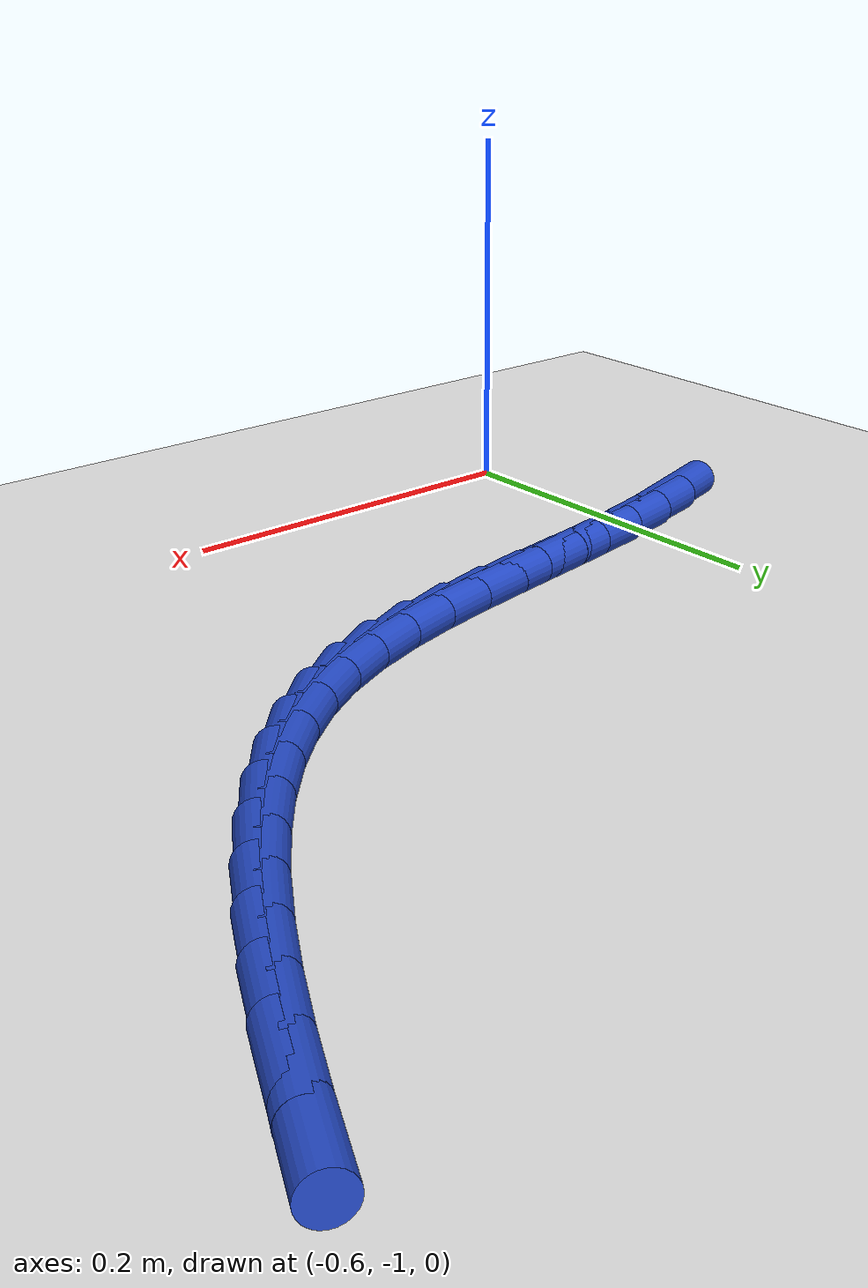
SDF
<sdf version="1.6">
 <world name="default">
  <model name="ground_plane">
   <static>1</static>
   <link name="link">
    <collision name="collision">
     <geometry><plane><normal>0 0 1</normal><size>100 100</size></plane></geometry>
     <surface><friction><ode><mu>100</mu><mu2>50</mu2></ode></friction></surface>
    </collision>
    <visual name="visual">
     <cast_shadows>0</cast_shadows>
     <geometry><plane><normal>0 0 1</normal><size>100 100</size></plane></geometry>
     <material>
      <script><uri>file://media/materials/scripts/gazebo.material</uri><name>Gazebo/WhiteGlow</name></script>
     </material>
    </visual>
   </link>
  </model>
  <model name="line">
   <link name="link_209">
    <pose>-0.6320159589929513 -0.8821658228043346 0.01 0 1.57 0.30372131537964114</pose>
    <collision name="collision">
     <geometry><cylinder><radius>0.01</radius><length>0.08</length></cylinder></geometry>
    </collision>
    <visual name="visual">
     <material>
      <script><name>Gazebo/Blue</name><uri>file://media/materials/scripts/gazebo.material</uri></script>
     </material>
     <geometry><cylinder><radius>0.01</radius><length>0.08</length></cylinder></geometry>
    </visual>
   </link>
   <link name="link_210">
    <pose>-0.6033558818278524 -0.8731832280907663 0.01 0 1.57 0.2429753102603748</pose>
    <collision name="collision">
     <geometry><cylinder><radius>0.01</radius><length>0.08</length></cylinder></geometry>
    </collision>
    <visual name="visual">
     <material>
      <script><name>Gazebo/Blue</name><uri>file://media/materials/scripts/gazebo.material</uri></script>
     </material>
     <geometry><cylinder><radius>0.01</radius><length>0.08</length></cylinder></geometry>
    </visual>
   </link>
   <link name="link_211">
    <pose>-0.5742139564593799 -0.8659597461871079 0.01 0 1.57 0.20016290772665696</pose>
    <collision name="collision">
     <geometry><cylinder><radius>0.01</radius><length>0.08</length></cylinder></geometry>
    </collision>
    <visual name="visual">
     <material>
      <script><name>Gazebo/Blue</name><uri>file://media/materials/scripts/gazebo.material</uri></script>
     </material>
     <geometry><cylinder><radius>0.01</radius><length>0.08</length></cylinder></geometry>
    </visual>
   </link>
   <link name="link_212">
    <pose>-0.5448191655057175 -0.8599961414942041 0.01 0 1.57 0.17504904733585616</pose>
    <collision name="collision">
     <geometry><cylinder><radius>0.01</radius><length>0.08</length></cylinder></geometry>
    </collision>
    <visual name="visual">
     <material>
      <script><name>Gazebo/Blue</name><uri>file://media/materials/scripts/gazebo.material</uri></script>
     </material>
     <geometry><cylinder><radius>0.01</radius><length>0.08</length></cylinder></geometry>
    </visual>
   </link>
   <link name="link_213">
    <pose>-0.5154004915850485 -0.8547931784129003 0.01 0 1.57 0.16756661124073205</pose>
    <collision name="collision">
     <geometry><cylinder><radius>0.01</radius><length>0.08</length></cylinder></geometry>
    </collision>
    <visual name="visual">
     <material>
      <script><name>Gazebo/Blue</name><uri>file://media/materials/scripts/gazebo.material</uri></script>
     </material>
     <geometry><cylinder><radius>0.01</radius><length>0.08</length></cylinder></geometry>
    </visual>
   </link>
   <link name="link_214">
    <pose>-0.4861869173155566 -0.8498516213440412 0.01 0 1.57 0.17806190998568494</pose>
    <collision name="collision">
     <geometry><cylinder><radius>0.01</radius><length>0.08</length></cylinder></geometry>
    </collision>
    <visual name="visual">
     <material>
      <script><name>Gazebo/Blue</name><uri>file://media/materials/scripts/gazebo.material</uri></script>
     </material>
     <geometry><cylinder><radius>0.01</radius><length>0.08</length></cylinder></geometry>
    </visual>
   </link>
   <link name="link_215">
    <pose>-0.4574074253154248 -0.8446722346884719 0.01 0 1.57 0.2074010022637735</pose>
    <collision name="collision">
     <geometry><cylinder><radius>0.01</radius><length>0.08</length></cylinder></geometry>
    </collision>
    <visual name="visual">
     <material>
      <script><name>Gazebo/Blue</name><uri>file://media/materials/scripts/gazebo.material</uri></script>
     </material>
     <geometry><cylinder><radius>0.01</radius><length>0.08</length></cylinder></geometry>
    </visual>
   </link>
   <link name="link_216">
    <pose>-0.4292909982028368 -0.838755782847037 0.01 0 1.57 0.2569266310497188</pose>
    <collision name="collision">
     <geometry><cylinder><radius>0.01</radius><length>0.08</length></cylinder></geometry>
    </collision>
    <visual name="visual">
     <material>
      <script><name>Gazebo/Blue</name><uri>file://media/materials/scripts/gazebo.material</uri></script>
     </material>
     <geometry><cylinder><radius>0.01</radius><length>0.08</length></cylinder></geometry>
    </visual>
   </link>
   <link name="link_217">
    <pose>-0.40206661859597603 -0.8316030302205821 0.01 0 1.57 0.32819000959584665</pose>
    <collision name="collision">
     <geometry><cylinder><radius>0.01</radius><length>0.08</length></cylinder></geometry>
    </collision>
    <visual name="visual">
     <material>
      <script><name>Gazebo/Blue</name><uri>file://media/materials/scripts/gazebo.material</uri></script>
     </material>
     <geometry><cylinder><radius>0.01</radius><length>0.08</length></cylinder></geometry>
    </visual>
   </link>
   <link name="link_218">
    <pose>-0.375963269113026 -0.8227147412099516 0.01 0 1.57 0.4223182666350494</pose>
    <collision name="collision">
     <geometry><cylinder><radius>0.01</radius><length>0.08</length></cylinder></geometry>
    </collision>
    <visual name="visual">
     <material>
      <script><name>Gazebo/Blue</name><uri>file://media/materials/scripts/gazebo.material</uri></script>
     </material>
     <geometry><cylinder><radius>0.01</radius><length>0.08</length></cylinder></geometry>
    </visual>
   </link>
   <link name="link_219">
    <pose>-0.3512099323721701 -0.8115916802159909 0.01 0 1.57 0.5345513072260787</pose>
    <collision name="collision">
     <geometry><cylinder><radius>0.01</radius><length>0.08</length></cylinder></geometry>
    </collision>
    <visual name="visual">
     <material>
      <script><name>Gazebo/Blue</name><uri>file://media/materials/scripts/gazebo.material</uri></script>
     </material>
     <geometry><cylinder><radius>0.01</radius><length>0.08</length></cylinder></geometry>
    </visual>
   </link>
   <link name="link_220">
    <pose>-0.3279860931746355 -0.7978420720023279 0.01 0 1.57 0.6426980770567214</pose>
    <collision name="collision">
     <geometry><cylinder><radius>0.01</radius><length>0.08</length></cylinder></geometry>
    </collision>
    <visual name="visual">
     <material>
      <script><name>Gazebo/Blue</name><uri>file://media/materials/scripts/gazebo.material</uri></script>
     </material>
     <geometry><cylinder><radius>0.01</radius><length>0.08</length></cylinder></geometry>
    </visual>
   </link>
   <link name="link_221">
    <pose>-0.30624561240543985 -0.7815639735995383 0.01 0 1.57 0.7392411254330897</pose>
    <collision name="collision">
     <geometry><cylinder><radius>0.01</radius><length>0.08</length></cylinder></geometry>
    </collision>
    <visual name="visual">
     <material>
      <script><name>Gazebo/Blue</name><uri>file://media/materials/scripts/gazebo.material</uri></script>
     </material>
     <geometry><cylinder><radius>0.01</radius><length>0.08</length></cylinder></geometry>
    </visual>
   </link>
   <link name="link_222">
    <pose>-0.28587809908167433 -0.7629949336251273 0.01 0 1.57 0.8235769842429265</pose>
    <collision name="collision">
     <geometry><cylinder><radius>0.01</radius><length>0.08</length></cylinder></geometry>
    </collision>
    <visual name="visual">
     <material>
      <script><name>Gazebo/Blue</name><uri>file://media/materials/scripts/gazebo.material</uri></script>
     </material>
     <geometry><cylinder><radius>0.01</radius><length>0.08</length></cylinder></geometry>
    </visual>
   </link>
   <link name="link_223">
    <pose>-0.26677315756417663 -0.7423725108053847 0.01 0 1.57 0.8959964777150551</pose>
    <collision name="collision">
     <geometry><cylinder><radius>0.01</radius><length>0.08</length></cylinder></geometry>
    </collision>
    <visual name="visual">
     <material>
      <script><name>Gazebo/Blue</name><uri>file://media/materials/scripts/gazebo.material</uri></script>
     </material>
     <geometry><cylinder><radius>0.01</radius><length>0.08</length></cylinder></geometry>
    </visual>
   </link>
   <link name="link_224">
    <pose>-0.24882039221378421 -0.7199342638666005 0.01 0 1.57 0.9572973000927276</pose>
    <collision name="collision">
     <geometry><cylinder><radius>0.01</radius><length>0.08</length></cylinder></geometry>
    </collision>
    <visual name="visual">
     <material>
      <script><name>Gazebo/Blue</name><uri>file://media/materials/scripts/gazebo.material</uri></script>
     </material>
     <geometry><cylinder><radius>0.01</radius><length>0.08</length></cylinder></geometry>
    </visual>
   </link>
   <link name="link_225">
    <pose>-0.23190940739133467 -0.6959177515350642 0.01 0 1.57 1.0084810847650212</pose>
    <collision name="collision">
     <geometry><cylinder><radius>0.01</radius><length>0.08</length></cylinder></geometry>
    </collision>
    <visual name="visual">
     <material>
      <script><name>Gazebo/Blue</name><uri>file://media/materials/scripts/gazebo.material</uri></script>
     </material>
     <geometry><cylinder><radius>0.01</radius><length>0.08</length></cylinder></geometry>
    </visual>
   </link>
   <link name="link_226">
    <pose>-0.21592980745766557 -0.6705605325370655 0.01 0 1.57 1.0505568659436313</pose>
    <collision name="collision">
     <geometry><cylinder><radius>0.01</radius><length>0.08</length></cylinder></geometry>
    </collision>
    <visual name="visual">
     <material>
      <script><name>Gazebo/Blue</name><uri>file://media/materials/scripts/gazebo.material</uri></script>
     </material>
     <geometry><cylinder><radius>0.01</radius><length>0.08</length></cylinder></geometry>
    </visual>
   </link>
   <link name="link_227">
    <pose>-0.2007711967736144 -0.6441001655988939 0.01 0 1.57 1.0844307802827622</pose>
    <collision name="collision">
     <geometry><cylinder><radius>0.01</radius><length>0.08</length></cylinder></geometry>
    </collision>
    <visual name="visual">
     <material>
      <script><name>Gazebo/Blue</name><uri>file://media/materials/scripts/gazebo.material</uri></script>
     </material>
     <geometry><cylinder><radius>0.01</radius><length>0.08</length></cylinder></geometry>
    </visual>
   </link>
   <link name="link_228">
    <pose>-0.1863231797000188 -0.6167742094468396 0.01 0 1.57 1.1108523135099242</pose>
    <collision name="collision">
     <geometry><cylinder><radius>0.01</radius><length>0.08</length></cylinder></geometry>
    </collision>
    <visual name="visual">
     <material>
      <script><name>Gazebo/Blue</name><uri>file://media/materials/scripts/gazebo.material</uri></script>
     </material>
     <geometry><cylinder><radius>0.01</radius><length>0.08</length></cylinder></geometry>
    </visual>
   </link>
   <link name="link_229">
    <pose>-0.17247536059771626 -0.5888202228071918 0.01 0 1.57 1.1303921563117394</pose>
    <collision name="collision">
     <geometry><cylinder><radius>0.01</radius><length>0.08</length></cylinder></geometry>
    </collision>
    <visual name="visual">
     <material>
      <script><name>Gazebo/Blue</name><uri>file://media/materials/scripts/gazebo.material</uri></script>
     </material>
     <geometry><cylinder><radius>0.01</radius><length>0.08</length></cylinder></geometry>
    </visual>
   </link>
  </model>
 </world>
</sdf>
